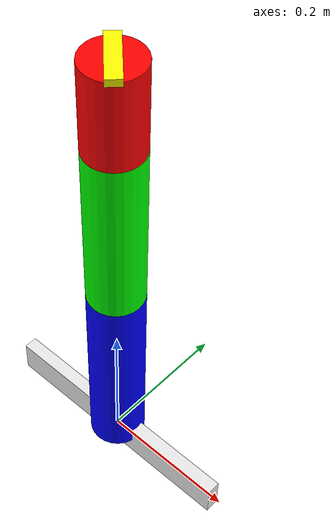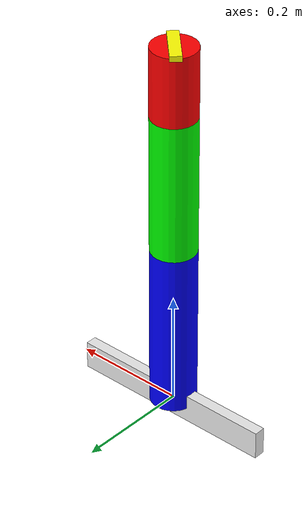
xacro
<?xml version="1.0"?>
<robot xmlns:xacro="http://www.ros.org/wiki/xacro">
  <!-- Thêm biến xacro cho kích thước giống tay người -->
  <xacro:property name="link_length" value="0.30" />    <!-- upper arm -->
  <xacro:property name="forearm_length" value="0.25" /> <!-- forearm -->
  <xacro:property name="wrist_length" value="0.125" />   <!-- wrist -->
  <xacro:property name="link_radius" value="0.04" />

  <!-- Góc khởi tạo khớp -->
  <xacro:property name="shoulder_init" value="${0.785}" /> <!-- 45 độ -->
  <xacro:property name="elbow_init" value="${1.57}" />     <!-- 90 độ -->
  <xacro:property name="wrist_init" value="0" />

  <!-- Base Link -->
  <link name="base_link">
    <visual name="base_link_visual">
      <origin rpy="0 0 0" xyz="0 0 0" />
      <geometry>
        <box size="0.3762 0.02 0.05" />
      </geometry>
      <material name="white" />
    </visual>
    <inertial>
      <origin xyz="0 0 0" />
      <mass value="2.2" />
      <inertia ixx="0.001" iyy="0.001" izz="0.001" ixy="0" ixz="0" iyz="0" />
    </inertial>
    <collision name="base_collision">
      <origin xyz="0 0 0" rpy="0 0 0" />
      <geometry>
        <box size="0.3762 0.02 0.05" />
      </geometry>
    </collision>
  </link>

  <!-- Base to Shoulder Joint -->
  <joint name="base_to_shoulder_joint" type="fixed">
    <parent link="base_link" />
    <child link="shoulder_link" />
    <origin xyz="0 0 0" rpy="0 0 0" />
    <limit lower="-2.0" upper="2.0" effort="5.0" velocity="1.0" />
  </joint>

  <!-- Shoulder Link -->
  <link name="shoulder_link">
    <visual>
      <geometry>
        <sphere radius="0.025" />
      </geometry>
      <origin xyz="0 0 0" rpy="0 0 0" />
      <material name="gray" />
    </visual>
    <collision>
      <geometry>
        <sphere radius="0.025" />
      </geometry>
      <origin xyz="0 0 0" rpy="0 0 0" />
    </collision>
    <inertial>
      <origin xyz="0 0 0" />
      <mass value="0.2" />
      <inertia ixx="0.00005" iyy="0.00005" izz="0.00005" ixy="0" ixz="0" iyz="0" />
    </inertial>
  </link>

  <!-- Shoulder Joint -->
  <joint name="shoulder_joint" type="revolute">
    <parent link="shoulder_link" />
    <child link="upper_arm_link" />
    <origin xyz="0 0 0" rpy="0 0 ${shoulder_init}" />
    <axis xyz="0 1 0" />
    <limit lower="-3.14" upper="3.14" effort="1.0" velocity="2.0" />
  </joint>

  <!-- Upper Arm Link -->
  <link name="upper_arm_link">
    <visual>
      <geometry>
        <cylinder length="${link_length}" radius="${link_radius}" />
      </geometry>
      <origin xyz="0 0 ${link_length/2}" rpy="0 0 0" />
      <material name="blue">
        <color rgba="0 0 1 1" />
      </material>
    </visual>
    <collision>
      <geometry>
        <cylinder length="${link_length}" radius="${link_radius}" />
      </geometry>
      <origin xyz="0 0 ${link_length/2}" rpy="0 0 0" />
    </collision>
    <inertial>
      <origin xyz="0 0 ${link_length/2}" rpy="0 0 0" />
      <mass value="0.15" />
      <inertia ixx="0.00012" iyy="0.00012" izz="0.00002" ixy="0" ixz="0" iyz="0" />
    </inertial>
  </link>

  <!-- Elbow Joint -->
  <joint name="elbow_joint" type="revolute">
    <parent link="upper_arm_link" />
    <child link="forearm_link" />
    <origin xyz="0 0 ${link_length}" rpy="0 0 ${elbow_init}" />
    <axis xyz="0 1 0" />
    <limit lower="-3.14" upper="3.14" effort="1.0" velocity="2.0" />
  </joint>

  <!-- Forearm Link -->
  <link name="forearm_link">
    <visual>
      <geometry>
        <cylinder length="${forearm_length}" radius="${link_radius}" />
      </geometry>
      <origin xyz="0 0 ${forearm_length/2}" rpy="0 0 0" />
      <material name="green">
        <color rgba="0 1 0 1" />
      </material>
    </visual>
    <collision>
      <geometry>
        <cylinder length="${forearm_length}" radius="${link_radius}" />
      </geometry>
      <origin xyz="0 0 ${forearm_length/2}" rpy="0 0 0" />
    </collision>
    <inertial>
      <origin xyz="0 0 ${forearm_length/2}" rpy="0 0 0" />
      <mass value="0.12" />
      <inertia ixx="0.00010" iyy="0.00010" izz="0.000015" ixy="0" ixz="0" iyz="0" />
    </inertial>
  </link>

  <!-- Wrist Joint -->
  <joint name="wrist_joint" type="revolute">
    <parent link="forearm_link" />
    <child link="wrist_link" />
    <origin xyz="0 0 ${forearm_length}" rpy="0 0 ${wrist_init}" />
    <axis xyz="0 1 0" />
    <limit lower="-3.14" upper="3.14" effort="1.0" velocity="2.0" />
  </joint>

  <!-- Wrist Link -->
  <link name="wrist_link">
    <visual>
      <geometry>
        <cylinder length="${wrist_length}" radius="${link_radius}" />
      </geometry>
      <origin xyz="0 0 ${wrist_length/2}" rpy="0 0 0" />
      <material name="red">
        <color rgba="1 0 0 1" />
      </material>
    </visual>
    <collision>
      <geometry>
        <cylinder length="${wrist_length}" radius="${link_radius}" />
      </geometry>
      <origin xyz="0 0 ${wrist_length/2}" rpy="0 0 0" />
    </collision>
    <inertial>
      <origin xyz="0 0 ${wrist_length/2}" rpy="0 0 0" />
      <mass value="0.08" />
      <inertia ixx="0.00007" iyy="0.00007" izz="0.00001" ixy="0" ixz="0" iyz="0" />
    </inertial>
  </link>

  <!-- End Effector -->
  <link name="end_effector_link">
    <visual>
      <geometry>
        <box size="0.08 0.02 0.01" /> <!-- hình hộp nhỏ, giống lòng bàn tay -->
      </geometry>
      <origin xyz="0 0 0" rpy="0 0 0" />
      <material name="yellow">
        <color rgba="1 1 0 1" />
      </material>
    </visual>
    <collision>
      <geometry>
        <box size="0.08 0.02 0.01" />
      </geometry>
      <origin xyz="0 0 0" rpy="0 0 0" />
    </collision>
    <inertial>
      <origin xyz="0 0 0" />
      <mass value="0.02" />
      <inertia ixx="0.00001" iyy="0.00001" izz="0.00001" ixy="0" ixz="0" iyz="0" />
    </inertial>
  </link>

  <!-- End Effector Joint -->
  <joint name="ee_fixed_joint" type="fixed">
    <parent link="wrist_link" />
    <child link="end_effector_link" />
    <origin xyz="0 0 ${wrist_length}" rpy="0 0 0" />
  </joint>

  <transmission name="trans_shoulder">
    <type>transmission_interface/SimpleTransmission</type>
    <joint name="shoulder_joint">
      <hardwareInterface>hardware_interface/PositionJointInterface</hardwareInterface>
    </joint>
    <actuator name="shoulder_motor">
      <hardwareInterface>hardware_interface/PositionJointInterface</hardwareInterface>
      <mechanicalReduction>1</mechanicalReduction>
    </actuator>
  </transmission>

  <transmission name="trans_elbow">
    <type>transmission_interface/SimpleTransmission</type>
    <joint name="elbow_joint">
      <hardwareInterface>hardware_interface/PositionJointInterface</hardwareInterface>
    </joint>
    <actuator name="elbow_motor">
      <hardwareInterface>hardware_interface/PositionJointInterface</hardwareInterface>
      <mechanicalReduction>1</mechanicalReduction>
    </actuator>
  </transmission>

  <transmission name="trans_wrist">
    <type>transmission_interface/SimpleTransmission</type>
    <joint name="wrist_joint">
      <hardwareInterface>hardware_interface/PositionJointInterface</hardwareInterface>
    </joint>
    <actuator name="wrist_motor">
      <hardwareInterface>hardware_interface/PositionJointInterface</hardwareInterface>
      <mechanicalReduction>1</mechanicalReduction>
    </actuator>
  </transmission>

</robot>
